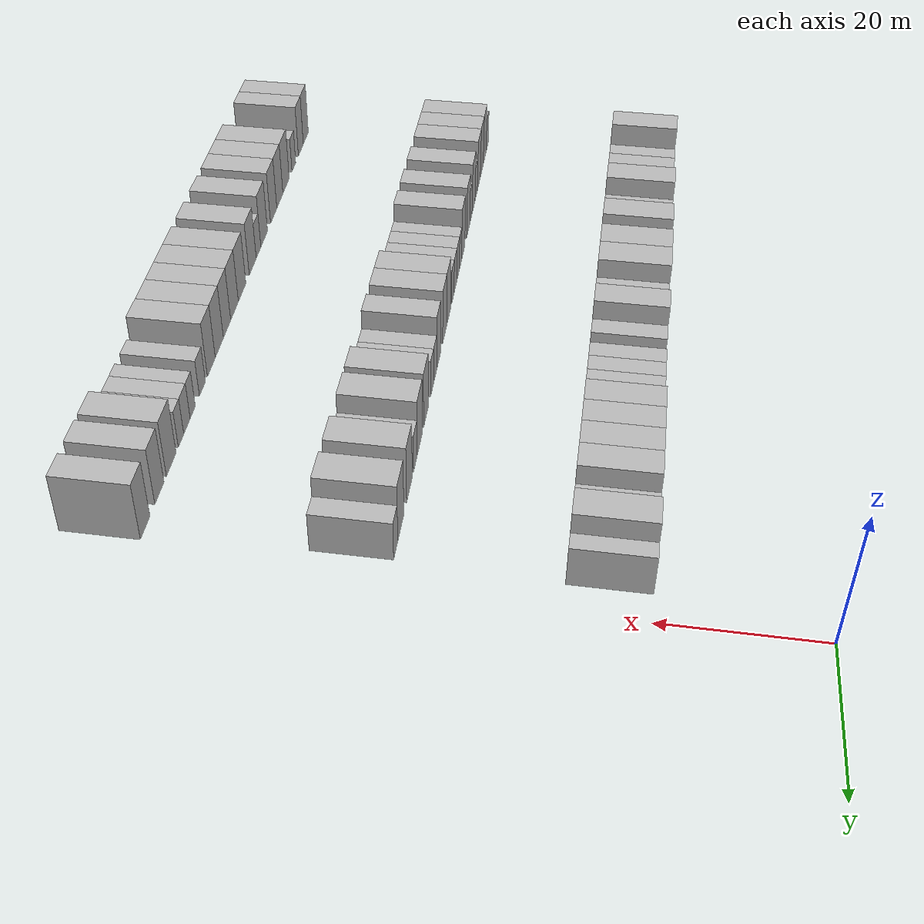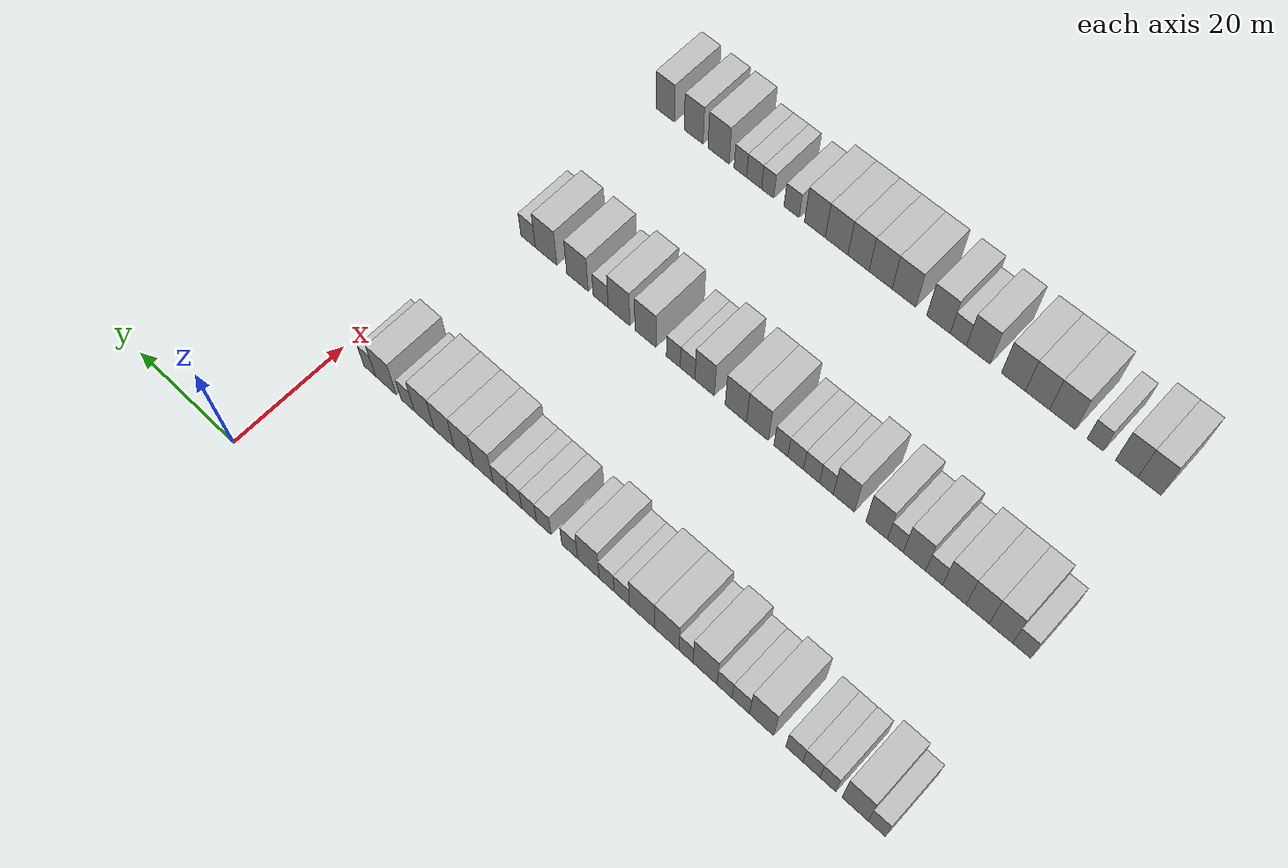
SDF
<sdf version="1.6">
 <world name="default">
  <model name="building_49">
   <static>1</static>
   <pose>25.0000 -97.0424 0 0.000000 0.000000 0.000000</pose>
   <link name="link">
    <pose>0 0 3.00 0 0 0</pose>
    <collision name="collision"><geometry><box><size>10.0000 2.7647 6.0000</size></box></geometry></collision>
    <visual name="visual">
     <cast_shadows>0</cast_shadows>
     <geometry><box><size>10.0000 2.7647 6.0000</size></box></geometry>
     <material>
      <script>
       <uri>model://HANNAS_wall/materials/scripts</uri>
       <uri>model://HANNAS_wall/materials/textures</uri>
       <name>vrc/HANNAS_wall</name>
      </script>
     </material>
    </visual>
   </link>
  </model>
  <model name="building_50">
   <static>1</static>
   <pose>25.0000 -93.5916 0 0.000000 0.000000 0.000000</pose>
   <link name="link">
    <pose>0 0 4.50 0 0 0</pose>
    <collision name="collision"><geometry><box><size>10.0000 4.1369 9.0000</size></box></geometry></collision>
    <visual name="visual">
     <cast_shadows>0</cast_shadows>
     <geometry><box><size>10.0000 4.1369 9.0000</size></box></geometry>
     <material>
      <script>
       <uri>model://HANNAS_wall/materials/scripts</uri>
       <uri>model://HANNAS_wall/materials/textures</uri>
       <name>vrc/HANNAS_wall</name>
      </script>
     </material>
    </visual>
   </link>
  </model>
  <model name="building_51">
   <static>1</static>
   <pose>25.0000 -89.2349 0 0.000000 0.000000 0.000000</pose>
   <link name="link">
    <pose>0 0 3.00 0 0 0</pose>
    <collision name="collision"><geometry><box><size>10.0000 2.5765 6.0000</size></box></geometry></collision>
    <visual name="visual">
     <cast_shadows>0</cast_shadows>
     <geometry><box><size>10.0000 2.5765 6.0000</size></box></geometry>
     <material>
      <script>
       <uri>model://HANNAS_wall/materials/scripts</uri>
       <uri>model://HANNAS_wall/materials/textures</uri>
       <name>vrc/HANNAS_wall</name>
      </script>
     </material>
    </visual>
   </link>
  </model>
  <model name="building_52">
   <static>1</static>
   <pose>25.0000 -86.5491 0 0.000000 0.000000 0.000000</pose>
   <link name="link">
    <pose>0 0 3.00 0 0 0</pose>
    <collision name="collision"><geometry><box><size>10.0000 2.7951 6.0000</size></box></geometry></collision>
    <visual name="visual">
     <cast_shadows>0</cast_shadows>
     <geometry><box><size>10.0000 2.7951 6.0000</size></box></geometry>
     <material>
      <script>
       <uri>model://HANNAS_wall/materials/scripts</uri>
       <uri>model://HANNAS_wall/materials/textures</uri>
       <name>vrc/HANNAS_wall</name>
      </script>
     </material>
    </visual>
   </link>
  </model>
  <model name="building_53">
   <static>1</static>
   <pose>25.0000 -83.7471 0 0.000000 0.000000 0.000000</pose>
   <link name="link">
    <pose>0 0 3.00 0 0 0</pose>
    <collision name="collision"><geometry><box><size>10.0000 2.8089 6.0000</size></box></geometry></collision>
    <visual name="visual">
     <cast_shadows>0</cast_shadows>
     <geometry><box><size>10.0000 2.8089 6.0000</size></box></geometry>
     <material>
      <script>
       <uri>model://HANNAS_wall/materials/scripts</uri>
       <uri>model://HANNAS_wall/materials/textures</uri>
       <name>vrc/HANNAS_wall</name>
      </script>
     </material>
    </visual>
   </link>
  </model>
  <model name="building_54">
   <static>1</static>
   <pose>25.0000 -78.3047 0 0.000000 0.000000 0.000000</pose>
   <link name="link">
    <pose>0 0 4.50 0 0 0</pose>
    <collision name="collision"><geometry><box><size>10.0000 4.0759 9.0000</size></box></geometry></collision>
    <visual name="visual">
     <cast_shadows>0</cast_shadows>
     <geometry><box><size>10.0000 4.0759 9.0000</size></box></geometry>
     <material>
      <script>
       <uri>model://HANNAS_wall/materials/scripts</uri>
       <uri>model://HANNAS_wall/materials/textures</uri>
       <name>vrc/HANNAS_wall</name>
      </script>
     </material>
    </visual>
   </link>
  </model>
  <model name="building_55">
   <static>1</static>
   <pose>25.0000 -74.7914 0 0.000000 0.000000 0.000000</pose>
   <link name="link">
    <pose>0 0 3.00 0 0 0</pose>
    <collision name="collision"><geometry><box><size>10.0000 2.9507 6.0000</size></box></geometry></collision>
    <visual name="visual">
     <cast_shadows>0</cast_shadows>
     <geometry><box><size>10.0000 2.9507 6.0000</size></box></geometry>
     <material>
      <script>
       <uri>model://HANNAS_wall/materials/scripts</uri>
       <uri>model://HANNAS_wall/materials/textures</uri>
       <name>vrc/HANNAS_wall</name>
      </script>
     </material>
    </visual>
   </link>
  </model>
  <model name="building_56">
   <static>1</static>
   <pose>25.0000 -72.0335 0 0.000000 0.000000 0.000000</pose>
   <link name="link">
    <pose>0 0 3.00 0 0 0</pose>
    <collision name="collision"><geometry><box><size>10.0000 2.5651 6.0000</size></box></geometry></collision>
    <visual name="visual">
     <cast_shadows>0</cast_shadows>
     <geometry><box><size>10.0000 2.5651 6.0000</size></box></geometry>
     <material>
      <script>
       <uri>model://HANNAS_wall/materials/scripts</uri>
       <uri>model://HANNAS_wall/materials/textures</uri>
       <name>vrc/HANNAS_wall</name>
      </script>
     </material>
    </visual>
   </link>
  </model>
  <model name="building_57">
   <static>1</static>
   <pose>25.0000 -68.6697 0 0.000000 0.000000 0.000000</pose>
   <link name="link">
    <pose>0 0 4.50 0 0 0</pose>
    <collision name="collision"><geometry><box><size>10.0000 4.1626 9.0000</size></box></geometry></collision>
    <visual name="visual">
     <cast_shadows>0</cast_shadows>
     <geometry><box><size>10.0000 4.1626 9.0000</size></box></geometry>
     <material>
      <script>
       <uri>model://HANNAS_wall/materials/scripts</uri>
       <uri>model://HANNAS_wall/materials/textures</uri>
       <name>vrc/HANNAS_wall</name>
      </script>
     </material>
    </visual>
   </link>
  </model>
  <model name="building_58">
   <static>1</static>
   <pose>25.0000 -65.3818 0 0.000000 0.000000 0.000000</pose>
   <link name="link">
    <pose>0 0 3.00 0 0 0</pose>
    <collision name="collision"><geometry><box><size>10.0000 2.4132 6.0000</size></box></geometry></collision>
    <visual name="visual">
     <cast_shadows>0</cast_shadows>
     <geometry><box><size>10.0000 2.4132 6.0000</size></box></geometry>
     <material>
      <script>
       <uri>model://HANNAS_wall/materials/scripts</uri>
       <uri>model://HANNAS_wall/materials/textures</uri>
       <name>vrc/HANNAS_wall</name>
      </script>
     </material>
    </visual>
   </link>
  </model>
  <model name="building_59">
   <static>1</static>
   <pose>25.0000 -61.9950 0 0.000000 0.000000 0.000000</pose>
   <link name="link">
    <pose>0 0 4.50 0 0 0</pose>
    <collision name="collision"><geometry><box><size>10.0000 4.3605 9.0000</size></box></geometry></collision>
    <visual name="visual">
     <cast_shadows>0</cast_shadows>
     <geometry><box><size>10.0000 4.3605 9.0000</size></box></geometry>
     <material>
      <script>
       <uri>model://HANNAS_wall/materials/scripts</uri>
       <uri>model://HANNAS_wall/materials/textures</uri>
       <name>vrc/HANNAS_wall</name>
      </script>
     </material>
    </visual>
   </link>
  </model>
  <model name="building_60">
   <static>1</static>
   <pose>25.0000 -57.6053 0 0.000000 0.000000 0.000000</pose>
   <link name="link">
    <pose>0 0 4.50 0 0 0</pose>
    <collision name="collision"><geometry><box><size>10.0000 4.4189 9.0000</size></box></geometry></collision>
    <visual name="visual">
     <cast_shadows>0</cast_shadows>
     <geometry><box><size>10.0000 4.4189 9.0000</size></box></geometry>
     <material>
      <script>
       <uri>model://HANNAS_wall/materials/scripts</uri>
       <uri>model://HANNAS_wall/materials/textures</uri>
       <name>vrc/HANNAS_wall</name>
      </script>
     </material>
    </visual>
   </link>
  </model>
  <model name="building_61">
   <static>1</static>
   <pose>25.0000 -54.0265 0 0.000000 0.000000 0.000000</pose>
   <link name="link">
    <pose>0 0 3.00 0 0 0</pose>
    <collision name="collision"><geometry><box><size>10.0000 2.7387 6.0000</size></box></geometry></collision>
    <visual name="visual">
     <cast_shadows>0</cast_shadows>
     <geometry><box><size>10.0000 2.7387 6.0000</size></box></geometry>
     <material>
      <script>
       <uri>model://HANNAS_wall/materials/scripts</uri>
       <uri>model://HANNAS_wall/materials/textures</uri>
       <name>vrc/HANNAS_wall</name>
      </script>
     </material>
    </visual>
   </link>
  </model>
  <model name="building_62">
   <static>1</static>
   <pose>25.0000 -51.3106 0 0.000000 0.000000 0.000000</pose>
   <link name="link">
    <pose>0 0 3.00 0 0 0</pose>
    <collision name="collision"><geometry><box><size>10.0000 2.6932 6.0000</size></box></geometry></collision>
    <visual name="visual">
     <cast_shadows>0</cast_shadows>
     <geometry><box><size>10.0000 2.6932 6.0000</size></box></geometry>
     <material>
      <script>
       <uri>model://HANNAS_wall/materials/scripts</uri>
       <uri>model://HANNAS_wall/materials/textures</uri>
       <name>vrc/HANNAS_wall</name>
      </script>
     </material>
    </visual>
   </link>
  </model>
  <model name="building_63">
   <static>1</static>
   <pose>25.0000 -47.9957 0 0.000000 0.000000 0.000000</pose>
   <link name="link">
    <pose>0 0 4.50 0 0 0</pose>
    <collision name="collision"><geometry><box><size>10.0000 3.9365 9.0000</size></box></geometry></collision>
    <visual name="visual">
     <cast_shadows>0</cast_shadows>
     <geometry><box><size>10.0000 3.9365 9.0000</size></box></geometry>
     <material>
      <script>
       <uri>model://HANNAS_wall/materials/scripts</uri>
       <uri>model://HANNAS_wall/materials/textures</uri>
       <name>vrc/HANNAS_wall</name>
      </script>
     </material>
    </visual>
   </link>
  </model>
  <model name="building_64">
   <static>1</static>
   <pose>25.0000 -44.5649 0 0.000000 0.000000 0.000000</pose>
   <link name="link">
    <pose>0 0 3.00 0 0 0</pose>
    <collision name="collision"><geometry><box><size>10.0000 2.9251 6.0000</size></box></geometry></collision>
    <visual name="visual">
     <cast_shadows>0</cast_shadows>
     <geometry><box><size>10.0000 2.9251 6.0000</size></box></geometry>
     <material>
      <script>
       <uri>model://HANNAS_wall/materials/scripts</uri>
       <uri>model://HANNAS_wall/materials/textures</uri>
       <name>vrc/HANNAS_wall</name>
      </script>
     </material>
    </visual>
   </link>
  </model>
  <model name="building_65">
   <static>1</static>
   <pose>25.0000 -39.7409 0 0.000000 0.000000 0.000000</pose>
   <link name="link">
    <pose>0 0 3.00 0 0 0</pose>
    <collision name="collision"><geometry><box><size>10.0000 2.7228 6.0000</size></box></geometry></collision>
    <visual name="visual">
     <cast_shadows>0</cast_shadows>
     <geometry><box><size>10.0000 2.7228 6.0000</size></box></geometry>
     <material>
      <script>
       <uri>model://HANNAS_wall/materials/scripts</uri>
       <uri>model://HANNAS_wall/materials/textures</uri>
       <name>vrc/HANNAS_wall</name>
      </script>
     </material>
    </visual>
   </link>
  </model>
  <model name="building_66">
   <static>1</static>
   <pose>25.0000 -36.9945 0 0.000000 0.000000 0.000000</pose>
   <link name="link">
    <pose>0 0 3.00 0 0 0</pose>
    <collision name="collision"><geometry><box><size>10.0000 2.7700 6.0000</size></box></geometry></collision>
    <visual name="visual">
     <cast_shadows>0</cast_shadows>
     <geometry><box><size>10.0000 2.7700 6.0000</size></box></geometry>
     <material>
      <script>
       <uri>model://HANNAS_wall/materials/scripts</uri>
       <uri>model://HANNAS_wall/materials/textures</uri>
       <name>vrc/HANNAS_wall</name>
      </script>
     </material>
    </visual>
   </link>
  </model>
  <model name="building_67">
   <static>1</static>
   <pose>25.0000 -34.3202 0 0.000000 0.000000 0.000000</pose>
   <link name="link">
    <pose>0 0 3.00 0 0 0</pose>
    <collision name="collision"><geometry><box><size>10.0000 2.5788 6.0000</size></box></geometry></collision>
    <visual name="visual">
     <cast_shadows>0</cast_shadows>
     <geometry><box><size>10.0000 2.5788 6.0000</size></box></geometry>
     <material>
      <script>
       <uri>model://HANNAS_wall/materials/scripts</uri>
       <uri>model://HANNAS_wall/materials/textures</uri>
       <name>vrc/HANNAS_wall</name>
      </script>
     </material>
    </visual>
   </link>
  </model>
  <model name="building_68">
   <static>1</static>
   <pose>25.0000 -31.5821 0 0.000000 0.000000 0.000000</pose>
   <link name="link">
    <pose>0 0 3.00 0 0 0</pose>
    <collision name="collision"><geometry><box><size>10.0000 2.8973 6.0000</size></box></geometry></collision>
    <visual name="visual">
     <cast_shadows>0</cast_shadows>
     <geometry><box><size>10.0000 2.8973 6.0000</size></box></geometry>
     <material>
      <script>
       <uri>model://HANNAS_wall/materials/scripts</uri>
       <uri>model://HANNAS_wall/materials/textures</uri>
       <name>vrc/HANNAS_wall</name>
      </script>
     </material>
    </visual>
   </link>
  </model>
  <model name="building_69">
   <static>1</static>
   <pose>25.0000 -28.2297 0 0.000000 0.000000 0.000000</pose>
   <link name="link">
    <pose>0 0 4.50 0 0 0</pose>
    <collision name="collision"><geometry><box><size>10.0000 3.8076 9.0000</size></box></geometry></collision>
    <visual name="visual">
     <cast_shadows>0</cast_shadows>
     <geometry><box><size>10.0000 3.8076 9.0000</size></box></geometry>
     <material>
      <script>
       <uri>model://HANNAS_wall/materials/scripts</uri>
       <uri>model://HANNAS_wall/materials/textures</uri>
       <name>vrc/HANNAS_wall</name>
      </script>
     </material>
    </visual>
   </link>
  </model>
  <model name="building_70">
   <static>1</static>
   <pose>25.0000 -24.4153 0 0.000000 0.000000 0.000000</pose>
   <link name="link">
    <pose>0 0 4.50 0 0 0</pose>
    <collision name="collision"><geometry><box><size>10.0000 3.8212 9.0000</size></box></geometry></collision>
    <visual name="visual">
     <cast_shadows>0</cast_shadows>
     <geometry><box><size>10.0000 3.8212 9.0000</size></box></geometry>
     <material>
      <script>
       <uri>model://HANNAS_wall/materials/scripts</uri>
       <uri>model://HANNAS_wall/materials/textures</uri>
       <name>vrc/HANNAS_wall</name>
      </script>
     </material>
    </visual>
   </link>
  </model>
  <model name="building_71">
   <static>1</static>
   <pose>25.0000 -20.5321 0 0.000000 0.000000 0.000000</pose>
   <link name="link">
    <pose>0 0 4.50 0 0 0</pose>
    <collision name="collision"><geometry><box><size>10.0000 3.9452 9.0000</size></box></geometry></collision>
    <visual name="visual">
     <cast_shadows>0</cast_shadows>
     <geometry><box><size>10.0000 3.9452 9.0000</size></box></geometry>
     <material>
      <script>
       <uri>model://HANNAS_wall/materials/scripts</uri>
       <uri>model://HANNAS_wall/materials/textures</uri>
       <name>vrc/HANNAS_wall</name>
      </script>
     </material>
    </visual>
   </link>
  </model>
  <model name="building_72">
   <static>1</static>
   <pose>25.0000 -16.5808 0 0.000000 0.000000 0.000000</pose>
   <link name="link">
    <pose>0 0 4.50 0 0 0</pose>
    <collision name="collision"><geometry><box><size>10.0000 3.9573 9.0000</size></box></geometry></collision>
    <visual name="visual">
     <cast_shadows>0</cast_shadows>
     <geometry><box><size>10.0000 3.9573 9.0000</size></box></geometry>
     <material>
      <script>
       <uri>model://HANNAS_wall/materials/scripts</uri>
       <uri>model://HANNAS_wall/materials/textures</uri>
       <name>vrc/HANNAS_wall</name>
      </script>
     </material>
    </visual>
   </link>
  </model>
  <model name="building_73">
   <static>1</static>
   <pose>25.0000 -13.2685 0 0.000000 0.000000 0.000000</pose>
   <link name="link">
    <pose>0 0 3.00 0 0 0</pose>
    <collision name="collision"><geometry><box><size>10.0000 2.6673 6.0000</size></box></geometry></collision>
    <visual name="visual">
     <cast_shadows>0</cast_shadows>
     <geometry><box><size>10.0000 2.6673 6.0000</size></box></geometry>
     <material>
      <script>
       <uri>model://HANNAS_wall/materials/scripts</uri>
       <uri>model://HANNAS_wall/materials/textures</uri>
       <name>vrc/HANNAS_wall</name>
      </script>
     </material>
    </visual>
   </link>
  </model>
  <model name="building_74">
   <static>1</static>
   <pose>25.0000 -8.8195 0 0.000000 0.000000 0.000000</pose>
   <link name="link">
    <pose>0 0 4.50 0 0 0</pose>
    <collision name="collision"><geometry><box><size>10.0000 4.2307 9.0000</size></box></geometry></collision>
    <visual name="visual">
     <cast_shadows>0</cast_shadows>
     <geometry><box><size>10.0000 4.2307 9.0000</size></box></geometry>
     <material>
      <script>
       <uri>model://HANNAS_wall/materials/scripts</uri>
       <uri>model://HANNAS_wall/materials/textures</uri>
       <name>vrc/HANNAS_wall</name>
      </script>
     </material>
    </visual>
   </link>
  </model>
  <model name="building_75">
   <static>1</static>
   <pose>25.0000 -5.4980 0 0.000000 0.000000 0.000000</pose>
   <link name="link">
    <pose>0 0 3.00 0 0 0</pose>
    <collision name="collision"><geometry><box><size>10.0000 2.4124 6.0000</size></box></geometry></collision>
    <visual name="visual">
     <cast_shadows>0</cast_shadows>
     <geometry><box><size>10.0000 2.4124 6.0000</size></box></geometry>
     <material>
      <script>
       <uri>model://HANNAS_wall/materials/scripts</uri>
       <uri>model://HANNAS_wall/materials/textures</uri>
       <name>vrc/HANNAS_wall</name>
      </script>
     </material>
    </visual>
   </link>
  </model>
  <model name="building_200">
   <static>1</static>
   <pose>55.0000 -96.2407 0 0.000000 0.000000 0.000000</pose>
   <link name="link">
    <pose>0 0 3.00 0 0 0</pose>
    <collision name="collision"><geometry><box><size>10.0000 2.9238 6.0000</size></box></geometry></collision>
    <visual name="visual">
     <cast_shadows>0</cast_shadows>
     <geometry><box><size>10.0000 2.9238 6.0000</size></box></geometry>
     <material>
      <script>
       <uri>model://HANNAS_wall/materials/scripts</uri>
       <uri>model://HANNAS_wall/materials/textures</uri>
       <name>vrc/HANNAS_wall</name>
      </script>
     </material>
    </visual>
   </link>
  </model>
  <model name="building_201">
   <static>1</static>
   <pose>55.0000 -92.8734 0 0.000000 0.000000 0.000000</pose>
   <link name="link">
    <pose>0 0 4.50 0 0 0</pose>
    <collision name="collision"><geometry><box><size>10.0000 3.8107 9.0000</size></box></geometry></collision>
    <visual name="visual">
     <cast_shadows>0</cast_shadows>
     <geometry><box><size>10.0000 3.8107 9.0000</size></box></geometry>
     <material>
      <script>
       <uri>model://HANNAS_wall/materials/scripts</uri>
       <uri>model://HANNAS_wall/materials/textures</uri>
       <name>vrc/HANNAS_wall</name>
      </script>
     </material>
    </visual>
   </link>
  </model>
  <model name="building_202">
   <static>1</static>
   <pose>55.0000 -89.0699 0 0.000000 0.000000 0.000000</pose>
   <link name="link">
    <pose>0 0 4.50 0 0 0</pose>
    <collision name="collision"><geometry><box><size>10.0000 3.7963 9.0000</size></box></geometry></collision>
    <visual name="visual">
     <cast_shadows>0</cast_shadows>
     <geometry><box><size>10.0000 3.7963 9.0000</size></box></geometry>
     <material>
      <script>
       <uri>model://HANNAS_wall/materials/scripts</uri>
       <uri>model://HANNAS_wall/materials/textures</uri>
       <name>vrc/HANNAS_wall</name>
      </script>
     </material>
    </visual>
   </link>
  </model>
  <model name="building_203">
   <static>1</static>
   <pose>55.0000 -85.2292 0 0.000000 0.000000 0.000000</pose>
   <link name="link">
    <pose>0 0 4.50 0 0 0</pose>
    <collision name="collision"><geometry><box><size>10.0000 3.8851 9.0000</size></box></geometry></collision>
    <visual name="visual">
     <cast_shadows>0</cast_shadows>
     <geometry><box><size>10.0000 3.8851 9.0000</size></box></geometry>
     <material>
      <script>
       <uri>model://HANNAS_wall/materials/scripts</uri>
       <uri>model://HANNAS_wall/materials/textures</uri>
       <name>vrc/HANNAS_wall</name>
      </script>
     </material>
    </visual>
   </link>
  </model>
  <model name="building_204">
   <static>1</static>
   <pose>55.0000 -81.8665 0 0.000000 0.000000 0.000000</pose>
   <link name="link">
    <pose>0 0 3.00 0 0 0</pose>
    <collision name="collision"><geometry><box><size>10.0000 2.8402 6.0000</size></box></geometry></collision>
    <visual name="visual">
     <cast_shadows>0</cast_shadows>
     <geometry><box><size>10.0000 2.8402 6.0000</size></box></geometry>
     <material>
      <script>
       <uri>model://HANNAS_wall/materials/scripts</uri>
       <uri>model://HANNAS_wall/materials/textures</uri>
       <name>vrc/HANNAS_wall</name>
      </script>
     </material>
    </visual>
   </link>
  </model>
  <model name="building_205">
   <static>1</static>
   <pose>55.0000 -78.5521 0 0.000000 0.000000 0.000000</pose>
   <link name="link">
    <pose>0 0 4.50 0 0 0</pose>
    <collision name="collision"><geometry><box><size>10.0000 3.7886 9.0000</size></box></geometry></collision>
    <visual name="visual">
     <cast_shadows>0</cast_shadows>
     <geometry><box><size>10.0000 3.7886 9.0000</size></box></geometry>
     <material>
      <script>
       <uri>model://HANNAS_wall/materials/scripts</uri>
       <uri>model://HANNAS_wall/materials/textures</uri>
       <name>vrc/HANNAS_wall</name>
      </script>
     </material>
    </visual>
   </link>
  </model>
  <model name="building_206">
   <static>1</static>
   <pose>55.0000 -75.3222 0 0.000000 0.000000 0.000000</pose>
   <link name="link">
    <pose>0 0 3.00 0 0 0</pose>
    <collision name="collision"><geometry><box><size>10.0000 2.6713 6.0000</size></box></geometry></collision>
    <visual name="visual">
     <cast_shadows>0</cast_shadows>
     <geometry><box><size>10.0000 2.6713 6.0000</size></box></geometry>
     <material>
      <script>
       <uri>model://HANNAS_wall/materials/scripts</uri>
       <uri>model://HANNAS_wall/materials/textures</uri>
       <name>vrc/HANNAS_wall</name>
      </script>
     </material>
    </visual>
   </link>
  </model>
  <model name="building_207">
   <static>1</static>
   <pose>55.0000 -72.1314 0 0.000000 0.000000 0.000000</pose>
   <link name="link">
    <pose>0 0 4.50 0 0 0</pose>
    <collision name="collision"><geometry><box><size>10.0000 3.7102 9.0000</size></box></geometry></collision>
    <visual name="visual">
     <cast_shadows>0</cast_shadows>
     <geometry><box><size>10.0000 3.7102 9.0000</size></box></geometry>
     <material>
      <script>
       <uri>model://HANNAS_wall/materials/scripts</uri>
       <uri>model://HANNAS_wall/materials/textures</uri>
       <name>vrc/HANNAS_wall</name>
      </script>
     </material>
    </visual>
   </link>
  </model>
  <model name="building_208">
   <static>1</static>
   <pose>55.0000 -66.4255 0 0.000000 0.000000 0.000000</pose>
   <link name="link">
    <pose>0 0 4.50 0 0 0</pose>
    <collision name="collision"><geometry><box><size>10.0000 3.7015 9.0000</size></box></geometry></collision>
    <visual name="visual">
     <cast_shadows>0</cast_shadows>
     <geometry><box><size>10.0000 3.7015 9.0000</size></box></geometry>
     <material>
      <script>
       <uri>model://HANNAS_wall/materials/scripts</uri>
       <uri>model://HANNAS_wall/materials/textures</uri>
       <name>vrc/HANNAS_wall</name>
      </script>
     </material>
    </visual>
   </link>
  </model>
  <model name="building_209">
   <static>1</static>
   <pose>55.0000 -63.3478 0 0.000000 0.000000 0.000000</pose>
   <link name="link">
    <pose>0 0 3.00 0 0 0</pose>
    <collision name="collision"><geometry><box><size>10.0000 2.4539 6.0000</size></box></geometry></collision>
    <visual name="visual">
     <cast_shadows>0</cast_shadows>
     <geometry><box><size>10.0000 2.4539 6.0000</size></box></geometry>
     <material>
      <script>
       <uri>model://HANNAS_wall/materials/scripts</uri>
       <uri>model://HANNAS_wall/materials/textures</uri>
       <name>vrc/HANNAS_wall</name>
      </script>
     </material>
    </visual>
   </link>
  </model>
  <model name="building_210">
   <static>1</static>
   <pose>55.0000 -60.7024 0 0.000000 0.000000 0.000000</pose>
   <link name="link">
    <pose>0 0 3.00 0 0 0</pose>
    <collision name="collision"><geometry><box><size>10.0000 2.8369 6.0000</size></box></geometry></collision>
    <visual name="visual">
     <cast_shadows>0</cast_shadows>
     <geometry><box><size>10.0000 2.8369 6.0000</size></box></geometry>
     <material>
      <script>
       <uri>model://HANNAS_wall/materials/scripts</uri>
       <uri>model://HANNAS_wall/materials/textures</uri>
       <name>vrc/HANNAS_wall</name>
      </script>
     </material>
    </visual>
   </link>
  </model>
  <model name="building_211">
   <static>1</static>
   <pose>55.0000 -57.8817 0 0.000000 0.000000 0.000000</pose>
   <link name="link">
    <pose>0 0 3.00 0 0 0</pose>
    <collision name="collision"><geometry><box><size>10.0000 2.8046 6.0000</size></box></geometry></collision>
    <visual name="visual">
     <cast_shadows>0</cast_shadows>
     <geometry><box><size>10.0000 2.8046 6.0000</size></box></geometry>
     <material>
      <script>
       <uri>model://HANNAS_wall/materials/scripts</uri>
       <uri>model://HANNAS_wall/materials/textures</uri>
       <name>vrc/HANNAS_wall</name>
      </script>
     </material>
    </visual>
   </link>
  </model>
  <model name="building_212">
   <static>1</static>
   <pose>55.0000 -55.2367 0 0.000000 0.000000 0.000000</pose>
   <link name="link">
    <pose>0 0 3.00 0 0 0</pose>
    <collision name="collision"><geometry><box><size>10.0000 2.4852 6.0000</size></box></geometry></collision>
    <visual name="visual">
     <cast_shadows>0</cast_shadows>
     <geometry><box><size>10.0000 2.4852 6.0000</size></box></geometry>
     <material>
      <script>
       <uri>model://HANNAS_wall/materials/scripts</uri>
       <uri>model://HANNAS_wall/materials/textures</uri>
       <name>vrc/HANNAS_wall</name>
      </script>
     </material>
    </visual>
   </link>
  </model>
  <model name="building_213">
   <static>1</static>
   <pose>55.0000 -50.9939 0 0.000000 0.000000 0.000000</pose>
   <link name="link">
    <pose>0 0 4.50 0 0 0</pose>
    <collision name="collision"><geometry><box><size>10.0000 4.0004 9.0000</size></box></geometry></collision>
    <visual name="visual">
     <cast_shadows>0</cast_shadows>
     <geometry><box><size>10.0000 4.0004 9.0000</size></box></geometry>
     <material>
      <script>
       <uri>model://HANNAS_wall/materials/scripts</uri>
       <uri>model://HANNAS_wall/materials/textures</uri>
       <name>vrc/HANNAS_wall</name>
      </script>
     </material>
    </visual>
   </link>
  </model>
  <model name="building_214">
   <static>1</static>
   <pose>55.0000 -47.0166 0 0.000000 0.000000 0.000000</pose>
   <link name="link">
    <pose>0 0 4.50 0 0 0</pose>
    <collision name="collision"><geometry><box><size>10.0000 3.9543 9.0000</size></box></geometry></collision>
    <visual name="visual">
     <cast_shadows>0</cast_shadows>
     <geometry><box><size>10.0000 3.9543 9.0000</size></box></geometry>
     <material>
      <script>
       <uri>model://HANNAS_wall/materials/scripts</uri>
       <uri>model://HANNAS_wall/materials/textures</uri>
       <name>vrc/HANNAS_wall</name>
      </script>
     </material>
    </visual>
   </link>
  </model>
  <model name="building_215">
   <static>1</static>
   <pose>55.0000 -41.2149 0 0.000000 0.000000 0.000000</pose>
   <link name="link">
    <pose>0 0 4.50 0 0 0</pose>
    <collision name="collision"><geometry><box><size>10.0000 3.6489 9.0000</size></box></geometry></collision>
    <visual name="visual">
     <cast_shadows>0</cast_shadows>
     <geometry><box><size>10.0000 3.6489 9.0000</size></box></geometry>
     <material>
      <script>
       <uri>model://HANNAS_wall/materials/scripts</uri>
       <uri>model://HANNAS_wall/materials/textures</uri>
       <name>vrc/HANNAS_wall</name>
      </script>
     </material>
    </visual>
   </link>
  </model>
  <model name="building_216">
   <static>1</static>
   <pose>55.0000 -38.0079 0 0.000000 0.000000 0.000000</pose>
   <link name="link">
    <pose>0 0 3.00 0 0 0</pose>
    <collision name="collision"><geometry><box><size>10.0000 2.7652 6.0000</size></box></geometry></collision>
    <visual name="visual">
     <cast_shadows>0</cast_shadows>
     <geometry><box><size>10.0000 2.7652 6.0000</size></box></geometry>
     <material>
      <script>
       <uri>model://HANNAS_wall/materials/scripts</uri>
       <uri>model://HANNAS_wall/materials/textures</uri>
       <name>vrc/HANNAS_wall</name>
      </script>
     </material>
    </visual>
   </link>
  </model>
  <model name="building_217">
   <static>1</static>
   <pose>55.0000 -35.3006 0 0.000000 0.000000 0.000000</pose>
   <link name="link">
    <pose>0 0 3.00 0 0 0</pose>
    <collision name="collision"><geometry><box><size>10.0000 2.6494 6.0000</size></box></geometry></collision>
    <visual name="visual">
     <cast_shadows>0</cast_shadows>
     <geometry><box><size>10.0000 2.6494 6.0000</size></box></geometry>
     <material>
      <script>
       <uri>model://HANNAS_wall/materials/scripts</uri>
       <uri>model://HANNAS_wall/materials/textures</uri>
       <name>vrc/HANNAS_wall</name>
      </script>
     </material>
    </visual>
   </link>
  </model>
  <model name="building_218">
   <static>1</static>
   <pose>55.0000 -29.9506 0 0.000000 0.000000 0.000000</pose>
   <link name="link">
    <pose>0 0 4.50 0 0 0</pose>
    <collision name="collision"><geometry><box><size>10.0000 4.0505 9.0000</size></box></geometry></collision>
    <visual name="visual">
     <cast_shadows>0</cast_shadows>
     <geometry><box><size>10.0000 4.0505 9.0000</size></box></geometry>
     <material>
      <script>
       <uri>model://HANNAS_wall/materials/scripts</uri>
       <uri>model://HANNAS_wall/materials/textures</uri>
       <name>vrc/HANNAS_wall</name>
      </script>
     </material>
    </visual>
   </link>
  </model>
  <model name="building_219">
   <static>1</static>
   <pose>55.0000 -24.7943 0 0.000000 0.000000 0.000000</pose>
   <link name="link">
    <pose>0 0 4.50 0 0 0</pose>
    <collision name="collision"><geometry><box><size>10.0000 4.2621 9.0000</size></box></geometry></collision>
    <visual name="visual">
     <cast_shadows>0</cast_shadows>
     <geometry><box><size>10.0000 4.2621 9.0000</size></box></geometry>
     <material>
      <script>
       <uri>model://HANNAS_wall/materials/scripts</uri>
       <uri>model://HANNAS_wall/materials/textures</uri>
       <name>vrc/HANNAS_wall</name>
      </script>
     </material>
    </visual>
   </link>
  </model>
  <model name="building_220">
   <static>1</static>
   <pose>55.0000 -21.1925 0 0.000000 0.000000 0.000000</pose>
   <link name="link">
    <pose>0 0 3.00 0 0 0</pose>
    <collision name="collision"><geometry><box><size>10.0000 2.9415 6.0000</size></box></geometry></collision>
    <visual name="visual">
     <cast_shadows>0</cast_shadows>
     <geometry><box><size>10.0000 2.9415 6.0000</size></box></geometry>
     <material>
      <script>
       <uri>model://HANNAS_wall/materials/scripts</uri>
       <uri>model://HANNAS_wall/materials/textures</uri>
       <name>vrc/HANNAS_wall</name>
      </script>
     </material>
    </visual>
   </link>
  </model>
  <model name="building_221">
   <static>1</static>
   <pose>55.0000 -16.5717 0 0.000000 0.000000 0.000000</pose>
   <link name="link">
    <pose>0 0 4.50 0 0 0</pose>
    <collision name="collision"><geometry><box><size>10.0000 4.3000 9.0000</size></box></geometry></collision>
    <visual name="visual">
     <cast_shadows>0</cast_shadows>
     <geometry><box><size>10.0000 4.3000 9.0000</size></box></geometry>
     <material>
      <script>
       <uri>model://HANNAS_wall/materials/scripts</uri>
       <uri>model://HANNAS_wall/materials/textures</uri>
       <name>vrc/HANNAS_wall</name>
      </script>
     </material>
    </visual>
   </link>
  </model>
  <model name="building_222">
   <static>1</static>
   <pose>55.0000 -10.2216 0 0.000000 0.000000 0.000000</pose>
   <link name="link">
    <pose>0 0 4.50 0 0 0</pose>
    <collision name="collision"><geometry><box><size>10.0000 4.4001 9.0000</size></box></geometry></collision>
    <visual name="visual">
     <cast_shadows>0</cast_shadows>
     <geometry><box><size>10.0000 4.4001 9.0000</size></box></geometry>
     <material>
      <script>
       <uri>model://HANNAS_wall/materials/scripts</uri>
       <uri>model://HANNAS_wall/materials/textures</uri>
       <name>vrc/HANNAS_wall</name>
      </script>
     </material>
    </visual>
   </link>
  </model>
  <model name="building_223">
   <static>1</static>
   <pose>55.0000 -6.5479 0 0.000000 0.000000 0.000000</pose>
   <link name="link">
    <pose>0 0 3.00 0 0 0</pose>
    <collision name="collision"><geometry><box><size>10.0000 2.9474 6.0000</size></box></geometry></collision>
    <visual name="visual">
     <cast_shadows>0</cast_shadows>
     <geometry><box><size>10.0000 2.9474 6.0000</size></box></geometry>
     <material>
      <script>
       <uri>model://HANNAS_wall/materials/scripts</uri>
       <uri>model://HANNAS_wall/materials/textures</uri>
       <name>vrc/HANNAS_wall</name>
      </script>
     </material>
    </visual>
   </link>
  </model>
  <model name="building_341">
   <static>1</static>
   <pose>85.0000 -94.8201 0 0.000000 0.000000 0.000000</pose>
   <link name="link">
    <pose>0 0 4.50 0 0 0</pose>
    <collision name="collision"><geometry><box><size>10.0000 3.8274 9.0000</size></box></geometry></collision>
    <visual name="visual">
     <cast_shadows>0</cast_shadows>
     <geometry><box><size>10.0000 3.8274 9.0000</size></box></geometry>
     <material>
      <script>
       <uri>model://HANNAS_wall/materials/scripts</uri>
       <uri>model://HANNAS_wall/materials/textures</uri>
       <name>vrc/HANNAS_wall</name>
      </script>
     </material>
    </visual>
   </link>
  </model>
  <model name="building_342">
   <static>1</static>
   <pose>85.0000 -91.0577 0 0.000000 0.000000 0.000000</pose>
   <link name="link">
    <pose>0 0 4.50 0 0 0</pose>
    <collision name="collision"><geometry><box><size>10.0000 3.6973 9.0000</size></box></geometry></collision>
    <visual name="visual">
     <cast_shadows>0</cast_shadows>
     <geometry><box><size>10.0000 3.6973 9.0000</size></box></geometry>
     <material>
      <script>
       <uri>model://HANNAS_wall/materials/scripts</uri>
       <uri>model://HANNAS_wall/materials/textures</uri>
       <name>vrc/HANNAS_wall</name>
      </script>
     </material>
    </visual>
   </link>
  </model>
  <model name="building_343">
   <static>1</static>
   <pose>85.0000 -85.8516 0 0.000000 0.000000 0.000000</pose>
   <link name="link">
    <pose>0 0 3.00 0 0 0</pose>
    <collision name="collision"><geometry><box><size>10.0000 2.7150 6.0000</size></box></geometry></collision>
    <visual name="visual">
     <cast_shadows>0</cast_shadows>
     <geometry><box><size>10.0000 2.7150 6.0000</size></box></geometry>
     <material>
      <script>
       <uri>model://HANNAS_wall/materials/scripts</uri>
       <uri>model://HANNAS_wall/materials/textures</uri>
       <name>vrc/HANNAS_wall</name>
      </script>
     </material>
    </visual>
   </link>
  </model>
  <model name="building_344">
   <static>1</static>
   <pose>85.0000 -80.2905 0 0.000000 0.000000 0.000000</pose>
   <link name="link">
    <pose>0 0 4.50 0 0 0</pose>
    <collision name="collision"><geometry><box><size>10.0000 4.4073 9.0000</size></box></geometry></collision>
    <visual name="visual">
     <cast_shadows>0</cast_shadows>
     <geometry><box><size>10.0000 4.4073 9.0000</size></box></geometry>
     <material>
      <script>
       <uri>model://HANNAS_wall/materials/scripts</uri>
       <uri>model://HANNAS_wall/materials/textures</uri>
       <name>vrc/HANNAS_wall</name>
      </script>
     </material>
    </visual>
   </link>
  </model>
  <model name="building_345">
   <static>1</static>
   <pose>85.0000 -76.0057 0 0.000000 0.000000 0.000000</pose>
   <link name="link">
    <pose>0 0 4.50 0 0 0</pose>
    <collision name="collision"><geometry><box><size>10.0000 4.1622 9.0000</size></box></geometry></collision>
    <visual name="visual">
     <cast_shadows>0</cast_shadows>
     <geometry><box><size>10.0000 4.1622 9.0000</size></box></geometry>
     <material>
      <script>
       <uri>model://HANNAS_wall/materials/scripts</uri>
       <uri>model://HANNAS_wall/materials/textures</uri>
       <name>vrc/HANNAS_wall</name>
      </script>
     </material>
    </visual>
   </link>
  </model>
  <model name="building_346">
   <static>1</static>
   <pose>85.0000 -71.8474 0 0.000000 0.000000 0.000000</pose>
   <link name="link">
    <pose>0 0 4.50 0 0 0</pose>
    <collision name="collision"><geometry><box><size>10.0000 4.1545 9.0000</size></box></geometry></collision>
    <visual name="visual">
     <cast_shadows>0</cast_shadows>
     <geometry><box><size>10.0000 4.1545 9.0000</size></box></geometry>
     <material>
      <script>
       <uri>model://HANNAS_wall/materials/scripts</uri>
       <uri>model://HANNAS_wall/materials/textures</uri>
       <name>vrc/HANNAS_wall</name>
      </script>
     </material>
    </visual>
   </link>
  </model>
  <model name="building_347">
   <static>1</static>
   <pose>85.0000 -65.6687 0 0.000000 0.000000 0.000000</pose>
   <link name="link">
    <pose>0 0 4.50 0 0 0</pose>
    <collision name="collision"><geometry><box><size>10.0000 4.2030 9.0000</size></box></geometry></collision>
    <visual name="visual">
     <cast_shadows>0</cast_shadows>
     <geometry><box><size>10.0000 4.2030 9.0000</size></box></geometry>
     <material>
      <script>
       <uri>model://HANNAS_wall/materials/scripts</uri>
       <uri>model://HANNAS_wall/materials/textures</uri>
       <name>vrc/HANNAS_wall</name>
      </script>
     </material>
    </visual>
   </link>
  </model>
  <model name="building_348">
   <static>1</static>
   <pose>85.0000 -62.1167 0 0.000000 0.000000 0.000000</pose>
   <link name="link">
    <pose>0 0 3.00 0 0 0</pose>
    <collision name="collision"><geometry><box><size>10.0000 2.9011 6.0000</size></box></geometry></collision>
    <visual name="visual">
     <cast_shadows>0</cast_shadows>
     <geometry><box><size>10.0000 2.9011 6.0000</size></box></geometry>
     <material>
      <script>
       <uri>model://HANNAS_wall/materials/scripts</uri>
       <uri>model://HANNAS_wall/materials/textures</uri>
       <name>vrc/HANNAS_wall</name>
      </script>
     </material>
    </visual>
   </link>
  </model>
  <model name="building_349">
   <static>1</static>
   <pose>85.0000 -58.5553 0 0.000000 0.000000 0.000000</pose>
   <link name="link">
    <pose>0 0 4.50 0 0 0</pose>
    <collision name="collision"><geometry><box><size>10.0000 4.2217 9.0000</size></box></geometry></collision>
    <visual name="visual">
     <cast_shadows>0</cast_shadows>
     <geometry><box><size>10.0000 4.2217 9.0000</size></box></geometry>
     <material>
      <script>
       <uri>model://HANNAS_wall/materials/scripts</uri>
       <uri>model://HANNAS_wall/materials/textures</uri>
       <name>vrc/HANNAS_wall</name>
      </script>
     </material>
    </visual>
   </link>
  </model>
  <model name="building_350">
   <static>1</static>
   <pose>85.0000 -52.2768 0 0.000000 0.000000 0.000000</pose>
   <link name="link">
    <pose>0 0 4.50 0 0 0</pose>
    <collision name="collision"><geometry><box><size>10.0000 4.3353 9.0000</size></box></geometry></collision>
    <visual name="visual">
     <cast_shadows>0</cast_shadows>
     <geometry><box><size>10.0000 4.3353 9.0000</size></box></geometry>
     <material>
      <script>
       <uri>model://HANNAS_wall/materials/scripts</uri>
       <uri>model://HANNAS_wall/materials/textures</uri>
       <name>vrc/HANNAS_wall</name>
      </script>
     </material>
    </visual>
   </link>
  </model>
  <model name="building_351">
   <static>1</static>
   <pose>85.0000 -47.9564 0 0.000000 0.000000 0.000000</pose>
   <link name="link">
    <pose>0 0 4.50 0 0 0</pose>
    <collision name="collision"><geometry><box><size>10.0000 4.3056 9.0000</size></box></geometry></collision>
    <visual name="visual">
     <cast_shadows>0</cast_shadows>
     <geometry><box><size>10.0000 4.3056 9.0000</size></box></geometry>
     <material>
      <script>
       <uri>model://HANNAS_wall/materials/scripts</uri>
       <uri>model://HANNAS_wall/materials/textures</uri>
       <name>vrc/HANNAS_wall</name>
      </script>
     </material>
    </visual>
   </link>
  </model>
  <model name="building_352">
   <static>1</static>
   <pose>85.0000 -43.8250 0 0.000000 0.000000 0.000000</pose>
   <link name="link">
    <pose>0 0 4.50 0 0 0</pose>
    <collision name="collision"><geometry><box><size>10.0000 3.9571 9.0000</size></box></geometry></collision>
    <visual name="visual">
     <cast_shadows>0</cast_shadows>
     <geometry><box><size>10.0000 3.9571 9.0000</size></box></geometry>
     <material>
      <script>
       <uri>model://HANNAS_wall/materials/scripts</uri>
       <uri>model://HANNAS_wall/materials/textures</uri>
       <name>vrc/HANNAS_wall</name>
      </script>
     </material>
    </visual>
   </link>
  </model>
  <model name="building_353">
   <static>1</static>
   <pose>85.0000 -39.6980 0 0.000000 0.000000 0.000000</pose>
   <link name="link">
    <pose>0 0 4.50 0 0 0</pose>
    <collision name="collision"><geometry><box><size>10.0000 4.2970 9.0000</size></box></geometry></collision>
    <visual name="visual">
     <cast_shadows>0</cast_shadows>
     <geometry><box><size>10.0000 4.2970 9.0000</size></box></geometry>
     <material>
      <script>
       <uri>model://HANNAS_wall/materials/scripts</uri>
       <uri>model://HANNAS_wall/materials/textures</uri>
       <name>vrc/HANNAS_wall</name>
      </script>
     </material>
    </visual>
   </link>
  </model>
  <model name="building_354">
   <static>1</static>
   <pose>85.0000 -35.5493 0 0.000000 0.000000 0.000000</pose>
   <link name="link">
    <pose>0 0 4.50 0 0 0</pose>
    <collision name="collision"><geometry><box><size>10.0000 4.0005 9.0000</size></box></geometry></collision>
    <visual name="visual">
     <cast_shadows>0</cast_shadows>
     <geometry><box><size>10.0000 4.0005 9.0000</size></box></geometry>
     <material>
      <script>
       <uri>model://HANNAS_wall/materials/scripts</uri>
       <uri>model://HANNAS_wall/materials/textures</uri>
       <name>vrc/HANNAS_wall</name>
      </script>
     </material>
    </visual>
   </link>
  </model>
  <model name="building_355">
   <static>1</static>
   <pose>85.0000 -31.0739 0 0.000000 0.000000 0.000000</pose>
   <link name="link">
    <pose>0 0 3.00 0 0 0</pose>
    <collision name="collision"><geometry><box><size>10.0000 2.9503 6.0000</size></box></geometry></collision>
    <visual name="visual">
     <cast_shadows>0</cast_shadows>
     <geometry><box><size>10.0000 2.9503 6.0000</size></box></geometry>
     <material>
      <script>
       <uri>model://HANNAS_wall/materials/scripts</uri>
       <uri>model://HANNAS_wall/materials/textures</uri>
       <name>vrc/HANNAS_wall</name>
      </script>
     </material>
    </visual>
   </link>
  </model>
  <model name="building_356">
   <static>1</static>
   <pose>85.0000 -26.3903 0 0.000000 0.000000 0.000000</pose>
   <link name="link">
    <pose>0 0 3.00 0 0 0</pose>
    <collision name="collision"><geometry><box><size>10.0000 2.4169 6.0000</size></box></geometry></collision>
    <visual name="visual">
     <cast_shadows>0</cast_shadows>
     <geometry><box><size>10.0000 2.4169 6.0000</size></box></geometry>
     <material>
      <script>
       <uri>model://HANNAS_wall/materials/scripts</uri>
       <uri>model://HANNAS_wall/materials/textures</uri>
       <name>vrc/HANNAS_wall</name>
      </script>
     </material>
    </visual>
   </link>
  </model>
  <model name="building_357">
   <static>1</static>
   <pose>85.0000 -23.7006 0 0.000000 0.000000 0.000000</pose>
   <link name="link">
    <pose>0 0 3.00 0 0 0</pose>
    <collision name="collision"><geometry><box><size>10.0000 2.9625 6.0000</size></box></geometry></collision>
    <visual name="visual">
     <cast_shadows>0</cast_shadows>
     <geometry><box><size>10.0000 2.9625 6.0000</size></box></geometry>
     <material>
      <script>
       <uri>model://HANNAS_wall/materials/scripts</uri>
       <uri>model://HANNAS_wall/materials/textures</uri>
       <name>vrc/HANNAS_wall</name>
      </script>
     </material>
    </visual>
   </link>
  </model>
  <model name="building_358">
   <static>1</static>
   <pose>85.0000 -20.9787 0 0.000000 0.000000 0.000000</pose>
   <link name="link">
    <pose>0 0 3.00 0 0 0</pose>
    <collision name="collision"><geometry><box><size>10.0000 2.4813 6.0000</size></box></geometry></collision>
    <visual name="visual">
     <cast_shadows>0</cast_shadows>
     <geometry><box><size>10.0000 2.4813 6.0000</size></box></geometry>
     <material>
      <script>
       <uri>model://HANNAS_wall/materials/scripts</uri>
       <uri>model://HANNAS_wall/materials/textures</uri>
       <name>vrc/HANNAS_wall</name>
      </script>
     </material>
    </visual>
   </link>
  </model>
  <model name="building_359">
   <static>1</static>
   <pose>85.0000 -16.6104 0 0.000000 0.000000 0.000000</pose>
   <link name="link">
    <pose>0 0 4.50 0 0 0</pose>
    <collision name="collision"><geometry><box><size>10.0000 4.2553 9.0000</size></box></geometry></collision>
    <visual name="visual">
     <cast_shadows>0</cast_shadows>
     <geometry><box><size>10.0000 4.2553 9.0000</size></box></geometry>
     <material>
      <script>
       <uri>model://HANNAS_wall/materials/scripts</uri>
       <uri>model://HANNAS_wall/materials/textures</uri>
       <name>vrc/HANNAS_wall</name>
      </script>
     </material>
    </visual>
   </link>
  </model>
  <model name="building_360">
   <static>1</static>
   <pose>85.0000 -11.5627 0 0.000000 0.000000 0.000000</pose>
   <link name="link">
    <pose>0 0 4.50 0 0 0</pose>
    <collision name="collision"><geometry><box><size>10.0000 3.8402 9.0000</size></box></geometry></collision>
    <visual name="visual">
     <cast_shadows>0</cast_shadows>
     <geometry><box><size>10.0000 3.8402 9.0000</size></box></geometry>
     <material>
      <script>
       <uri>model://HANNAS_wall/materials/scripts</uri>
       <uri>model://HANNAS_wall/materials/textures</uri>
       <name>vrc/HANNAS_wall</name>
      </script>
     </material>
    </visual>
   </link>
  </model>
  <model name="building_361">
   <static>1</static>
   <pose>85.0000 -5.7327 0 0.000000 0.000000 0.000000</pose>
   <link name="link">
    <pose>0 0 4.50 0 0 0</pose>
    <collision name="collision"><geometry><box><size>10.0000 3.8198 9.0000</size></box></geometry></collision>
    <visual name="visual">
     <cast_shadows>0</cast_shadows>
     <geometry><box><size>10.0000 3.8198 9.0000</size></box></geometry>
     <material>
      <script>
       <uri>model://HANNAS_wall/materials/scripts</uri>
       <uri>model://HANNAS_wall/materials/textures</uri>
       <name>vrc/HANNAS_wall</name>
      </script>
     </material>
    </visual>
   </link>
  </model>
 </world>
</sdf>
